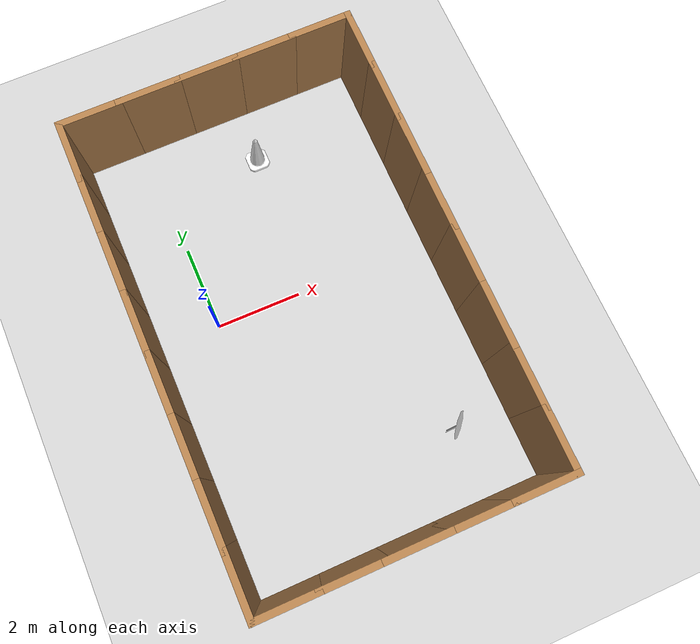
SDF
<sdf version="1.7">
 <world name="default">
  <plugin filename="gz-sim-physics-system" name="gz::sim::systems::Physics"/>
  <plugin filename="gz-sim-user-commands-system" name="gz::sim::systems::UserCommands"/>
  <plugin filename="gz-sim-scene-broadcaster-system" name="gz::sim::systems::SceneBroadcaster"/>
  <plugin filename="gz-sim-sensors-system" name="gz::sim::systems::Sensors">
   <render_engine>ogre2</render_engine>
  </plugin>
  <light name="sun" type="directional">
   <pose>0 0 10 0 -0 0</pose>
   <diffuse>0.8 0.8 0.8 1</diffuse>
   <specular>0.2 0.2 0.2 1</specular>
   <attenuation>
    <range>1000</range>
    <constant>0.9</constant>
    <linear>0.01</linear>
    <quadratic>0.001</quadratic>
   </attenuation>
   <direction>-0.5 0.1 -0.9</direction>
   <spot><inner_angle>0</inner_angle><outer_angle>0</outer_angle><falloff>0</falloff></spot>
  </light>
  <model name="ground_plane">
   <static>1</static>
   <link name="link">
    <collision name="collision">
     <geometry><plane><normal>0 0 1</normal><size>100 100</size></plane></geometry>
     <surface>
      <contact><collide_bitmask>65535</collide_bitmask></contact>
      <friction><ode><mu>100</mu><mu2>50</mu2></ode></friction>
     </surface>
    </collision>
    <visual name="visual">
     <cast_shadows>0</cast_shadows>
     <geometry><plane><normal>0 0 1</normal><size>100 100</size></plane></geometry>
     <material>
      <script><uri>file://media/materials/scripts/gazebo.material</uri><name>Gazebo/Grey</name></script>
     </material>
    </visual>
   </link>
  </model>
  <gravity>0 0 -9.8</gravity>
  <magnetic_field>6e-06 2.3e-05 -4.2e-05</magnetic_field>
  <atmosphere type="adiabatic"/>
  <physics type="ode">
   <max_step_size>0.001</max_step_size>
   <real_time_factor>1</real_time_factor>
   <real_time_update_rate>1000</real_time_update_rate>
  </physics>
  <scene><ambient>0.4 0.4 0.4 1</ambient><background>0.7 0.7 0.7 1</background><shadows>1</shadows></scene>
  <audio><device>default</device></audio>
  <spherical_coordinates>
   <surface_model>EARTH_WGS84</surface_model>
   <latitude_deg>0</latitude_deg>
   <longitude_deg>0</longitude_deg>
   <elevation>0</elevation>
   <heading_deg>0</heading_deg>
  </spherical_coordinates>
  <model name="Stop Sign">
   <static>1</static>
   <link name="link">
    <collision name="collision">
     <geometry><mesh><uri>model://stop_sign/meshes/stop_sign.dae</uri></mesh></geometry>
    </collision>
    <visual name="visual">
     <geometry><mesh><uri>model://stop_sign/meshes/stop_sign.dae</uri></mesh></geometry>
     <material>
      <ambient>1 1 1 1</ambient>
      <diffuse>1 1 1 1</diffuse>
      <specular>0.2 0.2 0.2 1</specular>
      <emissive>0.16 0.16 0.16 1</emissive>
      <pbr>
       <metal>
        <albedo_map>model://stop_sign/materials/textures/StopSign_Diffuse.png</albedo_map>
        <roughness>0.7</roughness>
        <metalness>0.0</metalness>
       </metal>
      </pbr>
     </material>
    </visual>
   </link>
   <pose>3.79214 -4.239 -0.018543 0 0 -2.25179</pose>
  </model>
  <model name="Construction Cone">
   <link name="link">
    <collision name="collision">
     <geometry>
      <mesh><scale>10 10 10</scale><uri>model://construction_cone/meshes/construction_cone.dae</uri></mesh>
     </geometry>
    </collision>
    <visual name="visual">
     <geometry>
      <mesh><scale>10 10 10</scale><uri>model://construction_cone/meshes/construction_cone.dae</uri></mesh>
     </geometry>
     <material>
      <ambient>1 1 1 1</ambient>
      <diffuse>1 1 1 1</diffuse>
      <specular>0.18 0.18 0.18 1</specular>
      <emissive>0.2 0.2 0.2 1</emissive>
      <pbr>
       <metal>
        <albedo_map>model://construction_cone/materials/textures/Construction_Cone_Diffuse.png</albedo_map>
        <roughness>0.8</roughness>
        <metalness>0.0</metalness>
       </metal>
      </pbr>
     </material>
    </visual>
    <inertial>
     <inertia><ixx>1</ixx><ixy>0</ixy><ixz>0</ixz><iyy>1</iyy><iyz>0</iyz><izz>1</izz></inertia>
     <mass>1</mass>
    </inertial>
   </link>
   <pose>2.40648 3.49353 -1e-05 0 0 -0.001352</pose>
  </model>
  <model name="wood_wall1">
   <pose>1.90218 -0.55923 0 0 -0 0</pose>
   <link name="Wall_27">
    <collision name="Wall_27_Collision">
     <geometry><box><size>1.5 0.15 2.5</size></box></geometry>
     <pose>0 0 1.25 0 -0 0</pose>
    </collision>
    <visual name="Wall_27_Visual">
     <pose>0 0 1.25 0 -0 0</pose>
     <geometry><box><size>1.5 0.15 2.5</size></box></geometry>
     <material>
      <script><uri>file://media/materials/scripts/gazebo.material</uri><name>Gazebo/Wood</name></script>
      <ambient>1 1 1 1</ambient>
     </material>
     <meta><layer>0</layer></meta>
    </visual>
    <pose>-3.375 -0.675 0 0 -0 -1.5708</pose>
   </link>
   <link name="Wall_28">
    <collision name="Wall_28_Collision">
     <geometry><box><size>1.5 0.15 2.5</size></box></geometry>
     <pose>0 0 1.25 0 -0 0</pose>
    </collision>
    <visual name="Wall_28_Visual">
     <pose>0 0 1.25 0 -0 0</pose>
     <geometry><box><size>1.5 0.15 2.5</size></box></geometry>
     <material>
      <script><uri>file://media/materials/scripts/gazebo.material</uri><name>Gazebo/Wood</name></script>
      <ambient>1 1 1 1</ambient>
     </material>
     <meta><layer>0</layer></meta>
    </visual>
    <pose>-3.375 -2.025 0 0 -0 -1.5708</pose>
   </link>
   <link name="Wall_31">
    <collision name="Wall_31_Collision">
     <geometry><box><size>1.5 0.15 2.5</size></box></geometry>
     <pose>0 0 1.25 0 -0 0</pose>
    </collision>
    <visual name="Wall_31_Visual">
     <pose>0 0 1.25 0 -0 0</pose>
     <geometry><box><size>1.5 0.15 2.5</size></box></geometry>
     <material>
      <script><uri>file://media/materials/scripts/gazebo.material</uri><name>Gazebo/Wood</name></script>
      <ambient>1 1 1 1</ambient>
     </material>
     <meta><layer>0</layer></meta>
    </visual>
    <pose>-3.375 -3.375 0 0 -0 -1.5708</pose>
   </link>
   <link name="Wall_32">
    <collision name="Wall_32_Collision">
     <geometry><box><size>1.5 0.15 2.5</size></box></geometry>
     <pose>0 0 1.25 0 -0 0</pose>
    </collision>
    <visual name="Wall_32_Visual">
     <pose>0 0 1.25 0 -0 0</pose>
     <geometry><box><size>1.5 0.15 2.5</size></box></geometry>
     <material>
      <script><uri>file://media/materials/scripts/gazebo.material</uri><name>Gazebo/Wood</name></script>
      <ambient>1 1 1 1</ambient>
     </material>
     <meta><layer>0</layer></meta>
    </visual>
    <pose>-3.375 -4.725 0 0 -0 -1.5708</pose>
   </link>
   <link name="Wall_33">
    <collision name="Wall_33_Collision">
     <geometry><box><size>1.5 0.15 2.5</size></box></geometry>
     <pose>0 0 1.25 0 -0 0</pose>
    </collision>
    <visual name="Wall_33_Visual">
     <pose>0 0 1.25 0 -0 0</pose>
     <geometry><box><size>1.5 0.15 2.5</size></box></geometry>
     <material>
      <script><uri>file://media/materials/scripts/gazebo.material</uri><name>Gazebo/Wood</name></script>
      <ambient>1 1 1 1</ambient>
     </material>
     <meta><layer>0</layer></meta>
    </visual>
    <pose>-2.7 -5.4 0 0 -0 0</pose>
   </link>
   <link name="Wall_34">
    <collision name="Wall_34_Collision">
     <geometry><box><size>1.5 0.15 2.5</size></box></geometry>
     <pose>0 0 1.25 0 -0 0</pose>
    </collision>
    <visual name="Wall_34_Visual">
     <pose>0 0 1.25 0 -0 0</pose>
     <geometry><box><size>1.5 0.15 2.5</size></box></geometry>
     <material>
      <script><uri>file://media/materials/scripts/gazebo.material</uri><name>Gazebo/Wood</name></script>
      <ambient>1 1 1 1</ambient>
     </material>
     <meta><layer>0</layer></meta>
    </visual>
    <pose>-1.35 -5.4 0 0 -0 0</pose>
   </link>
   <link name="Wall_35">
    <collision name="Wall_35_Collision">
     <geometry><box><size>1.5 0.15 2.5</size></box></geometry>
     <pose>0 0 1.25 0 -0 0</pose>
    </collision>
    <visual name="Wall_35_Visual">
     <pose>0 0 1.25 0 -0 0</pose>
     <geometry><box><size>1.5 0.15 2.5</size></box></geometry>
     <material>
      <script><uri>file://media/materials/scripts/gazebo.material</uri><name>Gazebo/Wood</name></script>
      <ambient>1 1 1 1</ambient>
     </material>
     <meta><layer>0</layer></meta>
    </visual>
    <pose>-0 -5.4 0 0 -0 0</pose>
   </link>
   <link name="Wall_36">
    <collision name="Wall_36_Collision">
     <geometry><box><size>1.5 0.15 2.5</size></box></geometry>
     <pose>0 0 1.25 0 -0 0</pose>
    </collision>
    <visual name="Wall_36_Visual">
     <pose>0 0 1.25 0 -0 0</pose>
     <geometry><box><size>1.5 0.15 2.5</size></box></geometry>
     <material>
      <script><uri>file://media/materials/scripts/gazebo.material</uri><name>Gazebo/Wood</name></script>
      <ambient>1 1 1 1</ambient>
     </material>
     <meta><layer>0</layer></meta>
    </visual>
    <pose>1.35 -5.4 0 0 -0 0</pose>
   </link>
   <link name="Wall_40">
    <collision name="Wall_40_Collision">
     <geometry><box><size>1.5 0.15 2.5</size></box></geometry>
     <pose>0 0 1.25 0 -0 0</pose>
    </collision>
    <visual name="Wall_40_Visual">
     <pose>0 0 1.25 0 -0 0</pose>
     <geometry><box><size>1.5 0.15 2.5</size></box></geometry>
     <material>
      <script><uri>file://media/materials/scripts/gazebo.material</uri><name>Gazebo/Wood</name></script>
      <ambient>1 1 1 1</ambient>
     </material>
     <meta><layer>0</layer></meta>
    </visual>
    <pose>2.7 -5.4 0 0 -0 0</pose>
   </link>
   <link name="Wall_41">
    <collision name="Wall_41_Collision">
     <geometry><box><size>1.5 0.15 2.5</size></box></geometry>
     <pose>0 0 1.25 0 -0 0</pose>
    </collision>
    <visual name="Wall_41_Visual">
     <pose>0 0 1.25 0 -0 0</pose>
     <geometry><box><size>1.5 0.15 2.5</size></box></geometry>
     <material>
      <script><uri>file://media/materials/scripts/gazebo.material</uri><name>Gazebo/Wood</name></script>
      <ambient>1 1 1 1</ambient>
     </material>
     <meta><layer>0</layer></meta>
    </visual>
    <pose>3.375 -4.725 0 0 -0 1.5708</pose>
   </link>
   <link name="Wall_42">
    <collision name="Wall_42_Collision">
     <geometry><box><size>1.5 0.15 2.5</size></box></geometry>
     <pose>0 0 1.25 0 -0 0</pose>
    </collision>
    <visual name="Wall_42_Visual">
     <pose>0 0 1.25 0 -0 0</pose>
     <geometry><box><size>1.5 0.15 2.5</size></box></geometry>
     <material>
      <script><uri>file://media/materials/scripts/gazebo.material</uri><name>Gazebo/Wood</name></script>
      <ambient>1 1 1 1</ambient>
     </material>
     <meta><layer>0</layer></meta>
    </visual>
    <pose>3.375 -3.375 0 0 -0 1.5708</pose>
   </link>
   <link name="Wall_43">
    <collision name="Wall_43_Collision">
     <geometry><box><size>1.5 0.15 2.5</size></box></geometry>
     <pose>0 0 1.25 0 -0 0</pose>
    </collision>
    <visual name="Wall_43_Visual">
     <pose>0 0 1.25 0 -0 0</pose>
     <geometry><box><size>1.5 0.15 2.5</size></box></geometry>
     <material>
      <script><uri>file://media/materials/scripts/gazebo.material</uri><name>Gazebo/Wood</name></script>
      <ambient>1 1 1 1</ambient>
     </material>
     <meta><layer>0</layer></meta>
    </visual>
    <pose>3.375 -2.025 0 0 -0 1.5708</pose>
   </link>
   <link name="Wall_45">
    <collision name="Wall_45_Collision">
     <geometry><box><size>1.5 0.15 2.5</size></box></geometry>
     <pose>0 0 1.25 0 -0 0</pose>
    </collision>
    <visual name="Wall_45_Visual">
     <pose>0 0 1.25 0 -0 0</pose>
     <geometry><box><size>1.5 0.15 2.5</size></box></geometry>
     <material>
      <script><uri>file://media/materials/scripts/gazebo.material</uri><name>Gazebo/Wood</name></script>
      <ambient>1 1 1 1</ambient>
     </material>
     <meta><layer>0</layer></meta>
    </visual>
    <pose>3.375 -0.675 0 0 -0 1.5708</pose>
   </link>
   <link name="Wall_46">
    <collision name="Wall_46_Collision">
     <geometry><box><size>1.5 0.15 2.5</size></box></geometry>
     <pose>0 0 1.25 0 -0 0</pose>
    </collision>
    <visual name="Wall_46_Visual">
     <pose>0 0 1.25 0 -0 0</pose>
     <geometry><box><size>1.5 0.15 2.5</size></box></geometry>
     <material>
      <script><uri>file://media/materials/scripts/gazebo.material</uri><name>Gazebo/Wood</name></script>
      <ambient>1 1 1 1</ambient>
     </material>
     <meta><layer>0</layer></meta>
    </visual>
    <pose>3.375 0.675 0 0 -0 1.5708</pose>
   </link>
   <link name="Wall_49">
    <collision name="Wall_49_Collision">
     <geometry><box><size>1.5 0.15 2.5</size></box></geometry>
     <pose>0 0 1.25 0 -0 0</pose>
    </collision>
    <visual name="Wall_49_Visual">
     <pose>0 0 1.25 0 -0 0</pose>
     <geometry><box><size>1.5 0.15 2.5</size></box></geometry>
     <material>
      <script><uri>file://media/materials/scripts/gazebo.material</uri><name>Gazebo/Wood</name></script>
      <ambient>1 1 1 1</ambient>
     </material>
     <meta><layer>0</layer></meta>
    </visual>
    <pose>3.375 2.025 0 0 -0 1.5708</pose>
   </link>
   <link name="Wall_51">
    <collision name="Wall_51_Collision">
     <geometry><box><size>1.5 0.15 2.5</size></box></geometry>
     <pose>0 0 1.25 0 -0 0</pose>
    </collision>
    <visual name="Wall_51_Visual">
     <pose>0 0 1.25 0 -0 0</pose>
     <geometry><box><size>1.5 0.15 2.5</size></box></geometry>
     <material>
      <script><uri>file://media/materials/scripts/gazebo.material</uri><name>Gazebo/Wood</name></script>
      <ambient>1 1 1 1</ambient>
     </material>
     <meta><layer>0</layer></meta>
    </visual>
    <pose>3.375 3.375 0 0 -0 1.5708</pose>
   </link>
   <link name="Wall_52">
    <collision name="Wall_52_Collision">
     <geometry><box><size>1.5 0.15 2.5</size></box></geometry>
     <pose>0 0 1.25 0 -0 0</pose>
    </collision>
    <visual name="Wall_52_Visual">
     <pose>0 0 1.25 0 -0 0</pose>
     <geometry><box><size>1.5 0.15 2.5</size></box></geometry>
     <material>
      <script><uri>file://media/materials/scripts/gazebo.material</uri><name>Gazebo/Wood</name></script>
      <ambient>1 1 1 1</ambient>
     </material>
     <meta><layer>0</layer></meta>
    </visual>
    <pose>3.375 4.725 0 0 -0 1.5708</pose>
   </link>
   <link name="Wall_53">
    <collision name="Wall_53_Collision">
     <geometry><box><size>1.5 0.15 2.5</size></box></geometry>
     <pose>0 0 1.25 0 -0 0</pose>
    </collision>
    <visual name="Wall_53_Visual">
     <pose>0 0 1.25 0 -0 0</pose>
     <geometry><box><size>1.5 0.15 2.5</size></box></geometry>
     <material>
      <script><uri>file://media/materials/scripts/gazebo.material</uri><name>Gazebo/Wood</name></script>
      <ambient>1 1 1 1</ambient>
     </material>
     <meta><layer>0</layer></meta>
    </visual>
    <pose>2.7 5.4 0 0 -0 3.14159</pose>
   </link>
   <link name="Wall_54">
    <collision name="Wall_54_Collision">
     <geometry><box><size>1.5 0.15 2.5</size></box></geometry>
     <pose>0 0 1.25 0 -0 0</pose>
    </collision>
    <visual name="Wall_54_Visual">
     <pose>0 0 1.25 0 -0 0</pose>
     <geometry><box><size>1.5 0.15 2.5</size></box></geometry>
     <material>
      <script><uri>file://media/materials/scripts/gazebo.material</uri><name>Gazebo/Wood</name></script>
      <ambient>1 1 1 1</ambient>
     </material>
     <meta><layer>0</layer></meta>
    </visual>
    <pose>1.35 5.4 0 0 -0 3.14159</pose>
   </link>
   <link name="Wall_55">
    <collision name="Wall_55_Collision">
     <geometry><box><size>1.5 0.15 2.5</size></box></geometry>
     <pose>0 0 1.25 0 -0 0</pose>
    </collision>
    <visual name="Wall_55_Visual">
     <pose>0 0 1.25 0 -0 0</pose>
     <geometry><box><size>1.5 0.15 2.5</size></box></geometry>
     <material>
      <script><uri>file://media/materials/scripts/gazebo.material</uri><name>Gazebo/Wood</name></script>
      <ambient>1 1 1 1</ambient>
     </material>
     <meta><layer>0</layer></meta>
    </visual>
    <pose>-0 5.4 0 0 -0 3.14159</pose>
   </link>
   <link name="Wall_56">
    <collision name="Wall_56_Collision">
     <geometry><box><size>1.5 0.15 2.5</size></box></geometry>
     <pose>0 0 1.25 0 -0 0</pose>
    </collision>
    <visual name="Wall_56_Visual">
     <pose>0 0 1.25 0 -0 0</pose>
     <geometry><box><size>1.5 0.15 2.5</size></box></geometry>
     <material>
      <script><uri>file://media/materials/scripts/gazebo.material</uri><name>Gazebo/Wood</name></script>
      <ambient>1 1 1 1</ambient>
     </material>
     <meta><layer>0</layer></meta>
    </visual>
    <pose>-1.35 5.4 0 0 -0 3.14159</pose>
   </link>
   <link name="Wall_57">
    <collision name="Wall_57_Collision">
     <geometry><box><size>1.5 0.15 2.5</size></box></geometry>
     <pose>0 0 1.25 0 -0 0</pose>
    </collision>
    <visual name="Wall_57_Visual">
     <pose>0 0 1.25 0 -0 0</pose>
     <geometry><box><size>1.5 0.15 2.5</size></box></geometry>
     <material>
      <script><uri>file://media/materials/scripts/gazebo.material</uri><name>Gazebo/Wood</name></script>
      <ambient>1 1 1 1</ambient>
     </material>
     <meta><layer>0</layer></meta>
    </visual>
    <pose>-2.7 5.4 0 0 -0 3.14159</pose>
   </link>
   <link name="Wall_58">
    <collision name="Wall_58_Collision">
     <geometry><box><size>1.5 0.15 2.5</size></box></geometry>
     <pose>0 0 1.25 0 -0 0</pose>
    </collision>
    <visual name="Wall_58_Visual">
     <pose>0 0 1.25 0 -0 0</pose>
     <geometry><box><size>1.5 0.15 2.5</size></box></geometry>
     <material>
      <script><uri>file://media/materials/scripts/gazebo.material</uri><name>Gazebo/Wood</name></script>
      <ambient>1 1 1 1</ambient>
     </material>
     <meta><layer>0</layer></meta>
    </visual>
    <pose>-3.375 4.725 0 0 -0 -1.5708</pose>
   </link>
   <link name="Wall_59">
    <collision name="Wall_59_Collision">
     <geometry><box><size>1.5 0.15 2.5</size></box></geometry>
     <pose>0 0 1.25 0 -0 0</pose>
    </collision>
    <visual name="Wall_59_Visual">
     <pose>0 0 1.25 0 -0 0</pose>
     <geometry><box><size>1.5 0.15 2.5</size></box></geometry>
     <material>
      <script><uri>file://media/materials/scripts/gazebo.material</uri><name>Gazebo/Wood</name></script>
      <ambient>1 1 1 1</ambient>
     </material>
     <meta><layer>0</layer></meta>
    </visual>
    <pose>-3.375 3.375 0 0 -0 -1.5708</pose>
   </link>
   <link name="Wall_61">
    <collision name="Wall_61_Collision">
     <geometry><box><size>1.5 0.15 2.5</size></box></geometry>
     <pose>0 0 1.25 0 -0 0</pose>
    </collision>
    <visual name="Wall_61_Visual">
     <pose>0 0 1.25 0 -0 0</pose>
     <geometry><box><size>1.5 0.15 2.5</size></box></geometry>
     <material>
      <script><uri>file://media/materials/scripts/gazebo.material</uri><name>Gazebo/Wood</name></script>
      <ambient>1 1 1 1</ambient>
     </material>
     <meta><layer>0</layer></meta>
    </visual>
    <pose>-3.375 2.025 0 0 -0 -1.5708</pose>
   </link>
   <link name="Wall_62">
    <collision name="Wall_62_Collision">
     <geometry><box><size>1.5 0.15 2.5</size></box></geometry>
     <pose>0 0 1.25 0 -0 0</pose>
    </collision>
    <visual name="Wall_62_Visual">
     <pose>0 0 1.25 0 -0 0</pose>
     <geometry><box><size>1.5 0.15 2.5</size></box></geometry>
     <material>
      <script><uri>file://media/materials/scripts/gazebo.material</uri><name>Gazebo/Wood</name></script>
      <ambient>1 1 1 1</ambient>
     </material>
     <meta><layer>0</layer></meta>
    </visual>
    <pose>-3.375 0.675 0 0 -0 -1.5708</pose>
   </link>
   <static>1</static>
  </model>
 </world>
</sdf>
